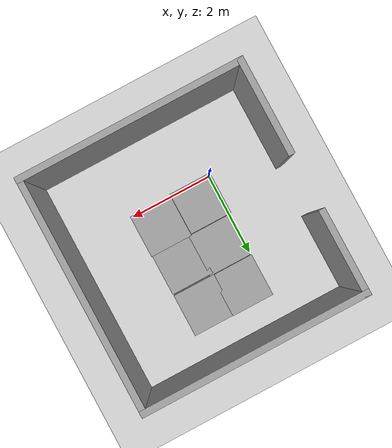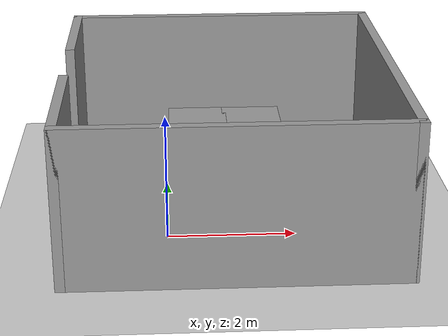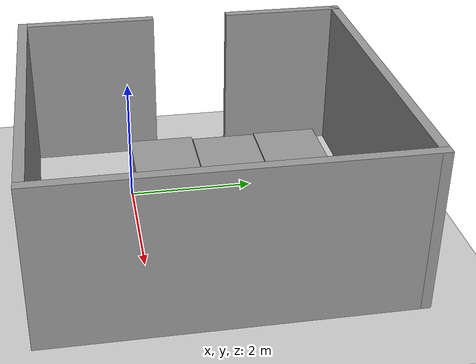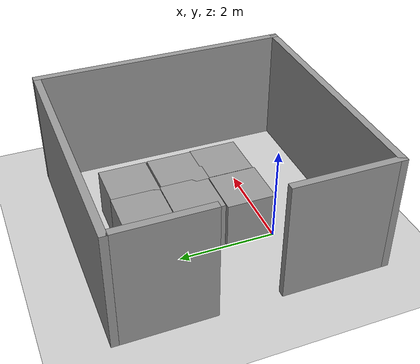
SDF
<sdf version="1.7">
 <world name="default">
  <light name="sun" type="directional">
   <pose>0 0 10 0 -0 0</pose>
   <diffuse>0.8 0.8 0.8 1</diffuse>
   <specular>0.2 0.2 0.2 1</specular>
   <attenuation>
    <range>1000</range>
    <constant>0.9</constant>
    <linear>0.01</linear>
    <quadratic>0.001</quadratic>
   </attenuation>
   <direction>-0.5 0.1 -0.9</direction>
   <spot><inner_angle>0</inner_angle><outer_angle>0</outer_angle><falloff>0</falloff></spot>
  </light>
  <model name="ground_plane">
   <static>1</static>
   <link name="link">
    <collision name="collision">
     <geometry><plane><normal>0 0 1</normal><size>100 100</size></plane></geometry>
     <surface>
      <contact><collide_bitmask>65535</collide_bitmask></contact>
      <friction><ode><mu>100</mu><mu2>50</mu2></ode></friction>
     </surface>
    </collision>
    <visual name="visual">
     <cast_shadows>0</cast_shadows>
     <geometry><plane><normal>0 0 1</normal><size>100 100</size></plane></geometry>
     <material>
      <script><uri>file://media/materials/scripts/gazebo.material</uri><name>Gazebo/Grey</name></script>
     </material>
    </visual>
   </link>
  </model>
  <gravity>0 0 -9.8</gravity>
  <magnetic_field>6e-06 2.3e-05 -4.2e-05</magnetic_field>
  <atmosphere type="adiabatic"/>
  <physics type="ode">
   <max_step_size>0.001</max_step_size>
   <real_time_factor>1</real_time_factor>
   <real_time_update_rate>1000</real_time_update_rate>
  </physics>
  <scene><ambient>0.4 0.4 0.4 1</ambient><background>0.7 0.7 0.7 1</background><shadows>1</shadows></scene>
  <spherical_coordinates>
   <surface_model>EARTH_WGS84</surface_model>
   <latitude_deg>0</latitude_deg>
   <longitude_deg>0</longitude_deg>
   <elevation>0</elevation>
   <heading_deg>0</heading_deg>
  </spherical_coordinates>
  <model name="home3">
   <pose>1.01 1.085 0 0 -0 0</pose>
   <link name="Wall_0">
    <collision name="Wall_0_Collision">
     <geometry><box><size>5.25 0.15 2.5</size></box></geometry>
     <pose>0 0 1.25 0 -0 0</pose>
    </collision>
    <visual name="Wall_0_Visual">
     <pose>0 0 1.25 0 -0 0</pose>
     <geometry><box><size>5.25 0.15 2.5</size></box></geometry>
     <material>
      <script><uri>file://media/materials/scripts/gazebo.material</uri><name>Gazebo/Grey</name></script>
      <ambient>1 1 1 1</ambient>
     </material>
     <meta><layer>0</layer></meta>
    </visual>
    <pose>-0 -2.675 0 0 -0 0</pose>
   </link>
   <link name="Wall_1">
    <collision name="Wall_1_Collision">
     <geometry><box><size>5.5 0.15 2.5</size></box></geometry>
     <pose>0 0 1.25 0 -0 0</pose>
    </collision>
    <visual name="Wall_1_Visual">
     <pose>0 0 1.25 0 -0 0</pose>
     <geometry><box><size>5.5 0.15 2.5</size></box></geometry>
     <material>
      <script><uri>file://media/materials/scripts/gazebo.material</uri><name>Gazebo/Grey</name></script>
      <ambient>1 1 1 1</ambient>
     </material>
     <meta><layer>0</layer></meta>
    </visual>
    <pose>2.55 0 0 0 -0 1.5708</pose>
   </link>
   <link name="Wall_2">
    <collision name="Wall_2_Collision">
     <geometry><box><size>5.25 0.15 2.5</size></box></geometry>
     <pose>0 0 1.25 0 -0 0</pose>
    </collision>
    <visual name="Wall_2_Visual">
     <pose>0 0 1.25 0 -0 0</pose>
     <geometry><box><size>5.25 0.15 2.5</size></box></geometry>
     <material>
      <script><uri>file://media/materials/scripts/gazebo.material</uri><name>Gazebo/Grey</name></script>
      <ambient>1 1 1 1</ambient>
     </material>
     <meta><layer>0</layer></meta>
    </visual>
    <pose>-0 2.675 0 0 -0 3.14159</pose>
   </link>
   <link name="Wall_3">
    <collision name="Wall_3_Collision">
     <geometry><box><size>2 0.15 2.5</size></box></geometry>
     <pose>0 0 1.25 0 -0 0</pose>
    </collision>
    <visual name="Wall_3_Visual">
     <pose>0 0 1.25 0 -0 0</pose>
     <geometry><box><size>2 0.15 2.5</size></box></geometry>
     <material>
      <script><uri>file://media/materials/scripts/gazebo.material</uri><name>Gazebo/Grey</name></script>
      <ambient>1 1 1 1</ambient>
     </material>
     <meta><layer>0</layer></meta>
    </visual>
    <pose>-2.55 1.75 0 0 -0 -1.5708</pose>
   </link>
   <link name="Wall_5">
    <collision name="Wall_5_Collision">
     <geometry><box><size>2.25 0.15 2.5</size></box></geometry>
     <pose>0 0 1.25 0 -0 0</pose>
    </collision>
    <visual name="Wall_5_Visual">
     <pose>0 0 1.25 0 -0 0</pose>
     <geometry><box><size>2.25 0.15 2.5</size></box></geometry>
     <material>
      <script><uri>file://media/materials/scripts/gazebo.material</uri><name>Gazebo/Grey</name></script>
      <ambient>1 1 1 1</ambient>
     </material>
     <meta><layer>0</layer></meta>
    </visual>
    <pose>-2.55 -1.625 0 0 -0 1.5708</pose>
   </link>
   <static>1</static>
  </model>
  <model name="obj">
   <link name="link_0">
    <inertial>
     <mass>1</mass>
     <inertia>
      <ixx>0.166667</ixx>
      <ixy>0</ixy>
      <ixz>0</ixz>
      <iyy>0.166667</iyy>
      <iyz>0</iyz>
      <izz>0.166667</izz>
     </inertia>
    </inertial>
    <pose>-0.471707 1.01382 0 0 -0 0</pose>
    <visual name="visual">
     <geometry><box><size>1 1 1</size></box></geometry>
     <material>
      <lighting>1</lighting>
      <script><uri>file://media/materials/scripts/gazebo.material</uri><name>Gazebo/Grey</name></script>
      <shader type="pixel"/>
     </material>
    </visual>
    <collision name="collision">
     <geometry><box><size>1 1 1</size></box></geometry>
     <surface>
      <friction>
       <ode><mu>1</mu><mu2>1</mu2><fdir1>0 0 0</fdir1><slip1>0</slip1><slip2>0</slip2></ode>
       <torsional>
        <coefficient>1</coefficient>
        <patch_radius>0</patch_radius>
        <surface_radius>0</surface_radius>
        <use_patch_radius>1</use_patch_radius>
        <ode><slip>0</slip></ode>
       </torsional>
      </friction>
      <bounce><restitution_coefficient>0</restitution_coefficient><threshold>1e+06</threshold></bounce>
      <contact>
       <collide_without_contact>0</collide_without_contact>
       <collide_without_contact_bitmask>1</collide_without_contact_bitmask>
       <collide_bitmask>1</collide_bitmask>
       <ode>
        <soft_cfm>0</soft_cfm>
        <soft_erp>0.2</soft_erp>
        <kp>1e+13</kp>
        <kd>1</kd>
        <max_vel>0.01</max_vel>
        <min_depth>0</min_depth>
       </ode>
       <bullet>
        <split_impulse>1</split_impulse>
        <split_impulse_penetration_threshold>-0.01</split_impulse_penetration_threshold>
        <soft_cfm>0</soft_cfm>
        <soft_erp>0.2</soft_erp>
        <kp>1e+13</kp>
        <kd>1</kd>
       </bullet>
      </contact>
     </surface>
    </collision>
   </link>
   <link name="link_1">
    <inertial>
     <mass>1</mass>
     <inertia>
      <ixx>0.166667</ixx>
      <ixy>0</ixy>
      <ixz>0</ixz>
      <iyy>0.166667</iyy>
      <iyz>0</iyz>
      <izz>0.166667</izz>
     </inertia>
    </inertial>
    <pose>0.465424 1.004 0 0 -0 0</pose>
    <visual name="visual">
     <geometry><box><size>1 1 1</size></box></geometry>
     <material>
      <lighting>1</lighting>
      <script><uri>file://media/materials/scripts/gazebo.material</uri><name>Gazebo/Grey</name></script>
      <shader type="pixel"/>
     </material>
    </visual>
    <collision name="collision">
     <geometry><box><size>1 1 1</size></box></geometry>
     <surface>
      <friction>
       <ode><mu>1</mu><mu2>1</mu2><fdir1>0 0 0</fdir1><slip1>0</slip1><slip2>0</slip2></ode>
       <torsional>
        <coefficient>1</coefficient>
        <patch_radius>0</patch_radius>
        <surface_radius>0</surface_radius>
        <use_patch_radius>1</use_patch_radius>
        <ode><slip>0</slip></ode>
       </torsional>
      </friction>
      <bounce><restitution_coefficient>0</restitution_coefficient><threshold>1e+06</threshold></bounce>
      <contact>
       <collide_without_contact>0</collide_without_contact>
       <collide_without_contact_bitmask>1</collide_without_contact_bitmask>
       <collide_bitmask>1</collide_bitmask>
       <ode>
        <soft_cfm>0</soft_cfm>
        <soft_erp>0.2</soft_erp>
        <kp>1e+13</kp>
        <kd>1</kd>
        <max_vel>0.01</max_vel>
        <min_depth>0</min_depth>
       </ode>
       <bullet>
        <split_impulse>1</split_impulse>
        <split_impulse_penetration_threshold>-0.01</split_impulse_penetration_threshold>
        <soft_cfm>0</soft_cfm>
        <soft_erp>0.2</soft_erp>
        <kp>1e+13</kp>
        <kd>1</kd>
       </bullet>
      </contact>
     </surface>
    </collision>
   </link>
   <link name="link_2">
    <inertial>
     <mass>1</mass>
     <inertia>
      <ixx>0.166667</ixx>
      <ixy>0</ixy>
      <ixz>0</ixz>
      <iyy>0.166667</iyy>
      <iyz>0</iyz>
      <izz>0.166667</izz>
     </inertia>
    </inertial>
    <pose>-0.44347 0.001903 0 0 -0 0</pose>
    <visual name="visual">
     <geometry><box><size>1 1 1</size></box></geometry>
     <material>
      <lighting>1</lighting>
      <script><uri>file://media/materials/scripts/gazebo.material</uri><name>Gazebo/Grey</name></script>
      <shader type="pixel"/>
     </material>
    </visual>
    <collision name="collision">
     <geometry><box><size>1 1 1</size></box></geometry>
     <surface>
      <friction>
       <ode><mu>1</mu><mu2>1</mu2><fdir1>0 0 0</fdir1><slip1>0</slip1><slip2>0</slip2></ode>
       <torsional>
        <coefficient>1</coefficient>
        <patch_radius>0</patch_radius>
        <surface_radius>0</surface_radius>
        <use_patch_radius>1</use_patch_radius>
        <ode><slip>0</slip></ode>
       </torsional>
      </friction>
      <bounce><restitution_coefficient>0</restitution_coefficient><threshold>1e+06</threshold></bounce>
      <contact>
       <collide_without_contact>0</collide_without_contact>
       <collide_without_contact_bitmask>1</collide_without_contact_bitmask>
       <collide_bitmask>1</collide_bitmask>
       <ode>
        <soft_cfm>0</soft_cfm>
        <soft_erp>0.2</soft_erp>
        <kp>1e+13</kp>
        <kd>1</kd>
        <max_vel>0.01</max_vel>
        <min_depth>0</min_depth>
       </ode>
       <bullet>
        <split_impulse>1</split_impulse>
        <split_impulse_penetration_threshold>-0.01</split_impulse_penetration_threshold>
        <soft_cfm>0</soft_cfm>
        <soft_erp>0.2</soft_erp>
        <kp>1e+13</kp>
        <kd>1</kd>
       </bullet>
      </contact>
     </surface>
    </collision>
   </link>
   <link name="link_3">
    <inertial>
     <mass>1</mass>
     <inertia>
      <ixx>0.166667</ixx>
      <ixy>0</ixy>
      <ixz>0</ixz>
      <iyy>0.166667</iyy>
      <iyz>0</iyz>
      <izz>0.166667</izz>
     </inertia>
    </inertial>
    <pose>0.471987 -0.027068 0 0 -0 0</pose>
    <visual name="visual">
     <geometry><box><size>1 1 1</size></box></geometry>
     <material>
      <lighting>1</lighting>
      <script><uri>file://media/materials/scripts/gazebo.material</uri><name>Gazebo/Grey</name></script>
      <shader type="pixel"/>
     </material>
    </visual>
    <collision name="collision">
     <geometry><box><size>1 1 1</size></box></geometry>
     <surface>
      <friction>
       <ode><mu>1</mu><mu2>1</mu2><fdir1>0 0 0</fdir1><slip1>0</slip1><slip2>0</slip2></ode>
       <torsional>
        <coefficient>1</coefficient>
        <patch_radius>0</patch_radius>
        <surface_radius>0</surface_radius>
        <use_patch_radius>1</use_patch_radius>
        <ode><slip>0</slip></ode>
       </torsional>
      </friction>
      <bounce><restitution_coefficient>0</restitution_coefficient><threshold>1e+06</threshold></bounce>
      <contact>
       <collide_without_contact>0</collide_without_contact>
       <collide_without_contact_bitmask>1</collide_without_contact_bitmask>
       <collide_bitmask>1</collide_bitmask>
       <ode>
        <soft_cfm>0</soft_cfm>
        <soft_erp>0.2</soft_erp>
        <kp>1e+13</kp>
        <kd>1</kd>
        <max_vel>0.01</max_vel>
        <min_depth>0</min_depth>
       </ode>
       <bullet>
        <split_impulse>1</split_impulse>
        <split_impulse_penetration_threshold>-0.01</split_impulse_penetration_threshold>
        <soft_cfm>0</soft_cfm>
        <soft_erp>0.2</soft_erp>
        <kp>1e+13</kp>
        <kd>1</kd>
       </bullet>
      </contact>
     </surface>
    </collision>
   </link>
   <link name="link_4">
    <inertial>
     <mass>1</mass>
     <inertia>
      <ixx>0.166667</ixx>
      <ixy>0</ixy>
      <ixz>0</ixz>
      <iyy>0.166667</iyy>
      <iyz>0</iyz>
      <izz>0.166667</izz>
     </inertia>
    </inertial>
    <pose>0.491477 -0.981236 0 0 -0 0</pose>
    <visual name="visual">
     <geometry><box><size>1 1 1</size></box></geometry>
     <material>
      <lighting>1</lighting>
      <script><uri>file://media/materials/scripts/gazebo.material</uri><name>Gazebo/Grey</name></script>
      <shader type="pixel"/>
     </material>
    </visual>
    <collision name="collision">
     <geometry><box><size>1 1 1</size></box></geometry>
     <surface>
      <friction>
       <ode><mu>1</mu><mu2>1</mu2><fdir1>0 0 0</fdir1><slip1>0</slip1><slip2>0</slip2></ode>
       <torsional>
        <coefficient>1</coefficient>
        <patch_radius>0</patch_radius>
        <surface_radius>0</surface_radius>
        <use_patch_radius>1</use_patch_radius>
        <ode><slip>0</slip></ode>
       </torsional>
      </friction>
      <bounce><restitution_coefficient>0</restitution_coefficient><threshold>1e+06</threshold></bounce>
      <contact>
       <collide_without_contact>0</collide_without_contact>
       <collide_without_contact_bitmask>1</collide_without_contact_bitmask>
       <collide_bitmask>1</collide_bitmask>
       <ode>
        <soft_cfm>0</soft_cfm>
        <soft_erp>0.2</soft_erp>
        <kp>1e+13</kp>
        <kd>1</kd>
        <max_vel>0.01</max_vel>
        <min_depth>0</min_depth>
       </ode>
       <bullet>
        <split_impulse>1</split_impulse>
        <split_impulse_penetration_threshold>-0.01</split_impulse_penetration_threshold>
        <soft_cfm>0</soft_cfm>
        <soft_erp>0.2</soft_erp>
        <kp>1e+13</kp>
        <kd>1</kd>
       </bullet>
      </contact>
     </surface>
    </collision>
   </link>
   <link name="link_5">
    <inertial>
     <mass>1</mass>
     <inertia>
      <ixx>0.166667</ixx>
      <ixy>0</ixy>
      <ixz>0</ixz>
      <iyy>0.166667</iyy>
      <iyz>0</iyz>
      <izz>0.166667</izz>
     </inertia>
    </inertial>
    <pose>-0.513714 -1.01141 0 0 -0 0</pose>
    <visual name="visual">
     <geometry><box><size>1 1 1</size></box></geometry>
     <material>
      <lighting>1</lighting>
      <script><uri>file://media/materials/scripts/gazebo.material</uri><name>Gazebo/Grey</name></script>
      <shader type="pixel"/>
     </material>
    </visual>
    <collision name="collision">
     <geometry><box><size>1 1 1</size></box></geometry>
     <surface>
      <friction>
       <ode><mu>1</mu><mu2>1</mu2><fdir1>0 0 0</fdir1><slip1>0</slip1><slip2>0</slip2></ode>
       <torsional>
        <coefficient>1</coefficient>
        <patch_radius>0</patch_radius>
        <surface_radius>0</surface_radius>
        <use_patch_radius>1</use_patch_radius>
        <ode><slip>0</slip></ode>
       </torsional>
      </friction>
      <bounce><restitution_coefficient>0</restitution_coefficient><threshold>1e+06</threshold></bounce>
      <contact>
       <collide_without_contact>0</collide_without_contact>
       <collide_without_contact_bitmask>1</collide_without_contact_bitmask>
       <collide_bitmask>1</collide_bitmask>
       <ode>
        <soft_cfm>0</soft_cfm>
        <soft_erp>0.2</soft_erp>
        <kp>1e+13</kp>
        <kd>1</kd>
        <max_vel>0.01</max_vel>
        <min_depth>0</min_depth>
       </ode>
       <bullet>
        <split_impulse>1</split_impulse>
        <split_impulse_penetration_threshold>-0.01</split_impulse_penetration_threshold>
        <soft_cfm>0</soft_cfm>
        <soft_erp>0.2</soft_erp>
        <kp>1e+13</kp>
        <kd>1</kd>
       </bullet>
      </contact>
     </surface>
    </collision>
   </link>
   <static>0</static>
   <pose>1.01628 1.51523 0.5 0 -0 0</pose>
  </model>
 </world>
</sdf>
